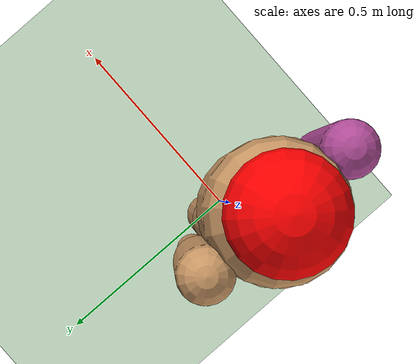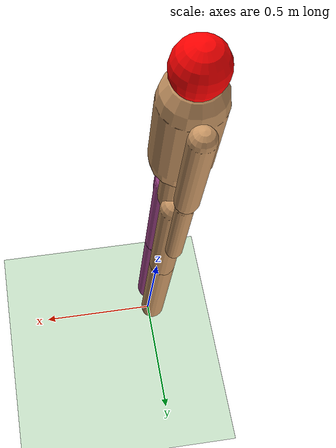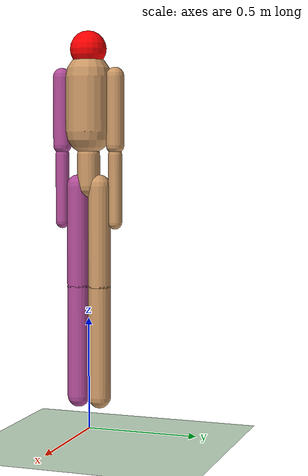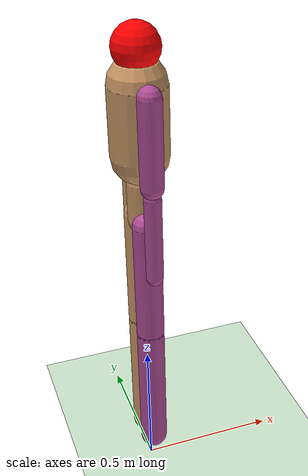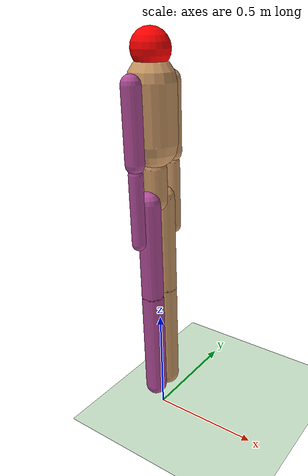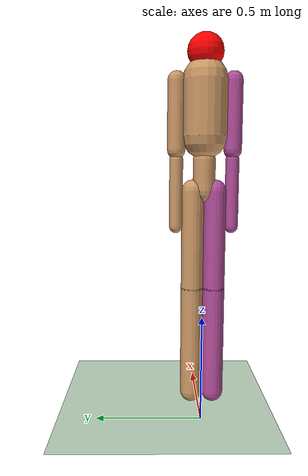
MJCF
<mujoco model="humanoid_2d_paired">
  <compiler angle="radian" inertiafromgeom="true"/>
  <default>
    <position kp="21.10" ctrlrange="-0.57 5.7" forcerange="-150 150"/>
    <joint armature="0.045" damping="1.084" limited="true" frictionloss="0.03"/>
    <geom conaffinity="0" condim="3" contype="1" density="50" rgba="0.8 0.6 .4 1"/>
  </default>
  <option integrator="RK4" timestep="0.002" gravity="0 0 -9.81"/>

  <worldbody>
    <light cutoff="100" diffuse="1 1 1" dir="-0 0 -1.3" directional="true" exponent="1" pos="0 0 1.3" specular=".1 .1 .1"/>
    <geom conaffinity="1" condim="3" name="floor" pos="0 0 0" rgba="0.8 0.9 0.8 1" size="40 40 40" type="plane" material="MatPlane"/>
    <camera name="track_com" mode="trackcom" pos="0 -1.5 -0.25" fovy="25" xyaxes="1 0 0 0 0 1"/>

    <body name="torso" pos="0 0 1.33">
      <joint armature="0" axis="1 0 0" damping="0" limited="false" name="rootx" pos="0 0 0" stiffness="0" type="slide"/>
      <joint armature="0" axis="0 0 1" damping="0" limited="false" name="rootz" pos="0 0 0" stiffness="0" type="slide"/>
      <joint armature="0" axis="0 1 0" damping="0" limited="false" name="rooty" pos="0 0 0" stiffness="0" type="hinge"/>

      <geom density="100" friction="0.9" name="lower_torso_geom" size="0.05 0.07" pos="0 0 -0.17" type="capsule"/>

      <body name="leg" pos="0 0.05 -0.24">
        <joint axis="0 1 0" name="leg_joint" range="-2 0" pos="0 0 0" type="hinge"/>
        <geom friction="0.9" pos="0 0 -0.225" name="leg_geom" size="0.05 0.225" type="capsule"/>
        <body name="shin" pos="0 0 -0.695">
          <joint axis="0 1 0" name="shin_joint" pos="0 0 0.25" range="0.5 2.0" type="hinge"/>
          <geom friction="0.9" name="shin_geom" size="0.05 0.25" type="capsule"/>
        </body>
      </body>

      <body name="leg_left" pos="0 -0.05 -0.24">
        <joint axis="0 1 0" name="leg_left_joint" range="-2 0" pos="0 0 0" type="hinge"/>
        <geom friction="0.9" pos="0 0 -0.225" name="leg_left_geom" size="0.05 0.225" type="capsule" rgba=".7 .3 .6 1"/>
        <body name="shin_left" pos="0 0 -0.695">
          <joint axis="0 1 0" name="shin_left_joint" pos="0 0 0.25" range="0.5 2.0" type="hinge"/>
          <geom friction="0.9" name="shin_left_geom" size="0.05 0.25" type="capsule" rgba=".7 .3 .6 1"/>
        </body>
      </body>

      <body name="upper_torso" pos="0 0 0.12">
        <joint axis="0 1 0" name="waist_joint" pos="0 0 -0.17" range="0 1.0" type="hinge"/>
        <geom density="100" friction="0.9" name="upper_torso_geom" size="0.1 0.12" pos="0 0 0" type="capsule"/>

        <geom name="head" pos="0 0 0.24" size="0.08" type="sphere" rgba="1 0 0 1"/>

        <body name="arm" pos="0 0.125 0.12">
          <joint axis="0 1 0" name="arm_joint" pos="0 0 0" range="-2.35 1.0" type="hinge"/>
          <geom friction="0.9" name="uarm_geom" pos="0 0 -0.15" size="0.04 0.15" type="capsule"/>
          <body name="forearm" pos="0 0 -0.49">
            <joint axis="0 1 0" name="forearm_joint" pos="0 0 0.19" range="4.01 6.0" type="hinge"/>
            <geom friction="0.9" name="larm_geom" pos="0 0 0.0" size="0.03 0.15" type="capsule"/>
          </body>
        </body>

        <body name="arm_left" pos="0 -0.125 0.12">
          <joint axis="0 1 0" name="arm_left_joint" pos="0 0 0" range="-2.35 1.0" type="hinge"/>
          <geom friction="0.9" name="uarm_left_geom" pos="0 0 -0.15" size="0.04 0.15" type="capsule" rgba=".7 .3 .6 1"/>
          <body name="forearm_left" pos="0 0 -0.49">
            <joint axis="0 1 0" name="forearm_left_joint" pos="0 0 0.19" range="4.01 6.0" type="hinge"/>
            <geom friction="0.9" name="larm_left_geom" pos="0 0 -0.0" size="0.03 0.15" type="capsule" rgba=".7 .3 .6 1"/>
          </body>
        </body>
      </body>
    </body>
  </worldbody>

  <equality>
    <joint joint1="leg_joint" joint2="leg_left_joint" polycoef="0 1 0 0 0"/>
    <joint joint1="shin_joint" joint2="shin_left_joint" polycoef="0 1 0 0 0"/>
    <joint joint1="arm_joint" joint2="arm_left_joint" polycoef="0 1 0 0 0"/>
    <joint joint1="forearm_joint" joint2="forearm_left_joint" polycoef="0 1 0 0 0"/>
  </equality>

  <actuator>
    <position joint="waist_joint" name="pos_waist" ctrlrange="0 1.0"/>
    <position joint="leg_joint" name="pos_leg" ctrlrange="-2 0"/>
    <position joint="shin_joint" name="pos_shin" ctrlrange="0.5 2.0"/>
    <position joint="arm_joint" name="pos_arm" ctrlrange="-2.35 1.0"/>
    <position joint="forearm_joint" name="pos_forearm" ctrlrange="4.01 6.0"/>
  </actuator>

  <asset>
    <texture type="skybox" builtin="gradient" rgb1=".4 .5 .6" rgb2="0 0 0" width="100" height="100"/>
    <texture builtin="flat" height="1278" mark="cross" markrgb="1 1 1" name="texgeom" random="0.01" rgb1="0.8 0.6 0.4" rgb2="0.8 0.6 0.4" type="cube" width="127"/>
    <texture builtin="checker" height="100" name="texplane" rgb1="0 0 0" rgb2="0.8 0.8 0.8" type="2d" width="100"/>
    <material name="MatPlane" reflectance="0.5" shininess="1" specular="1" texrepeat="60 60" texture="texplane"/>
    <material name="geom" texture="texgeom" texuniform="true"/>
  </asset>
</mujoco>
